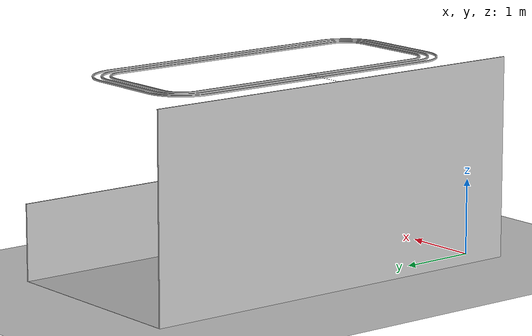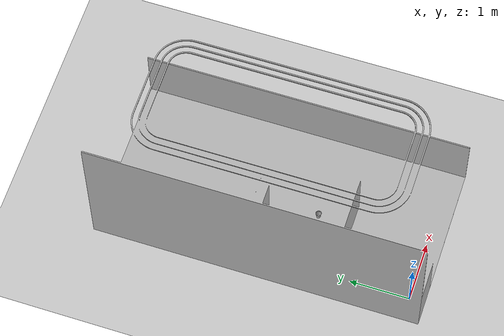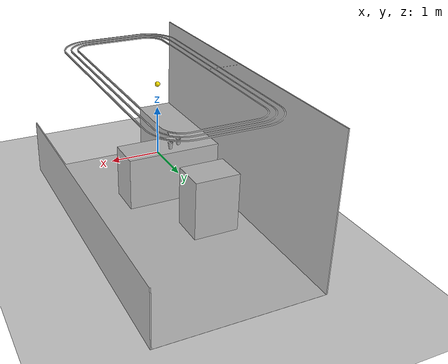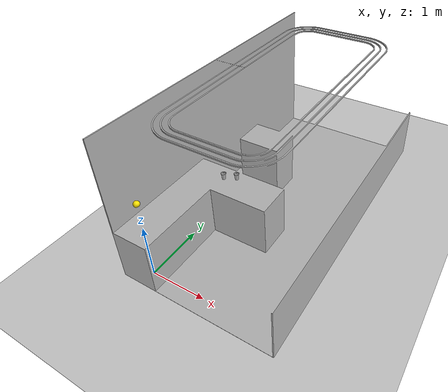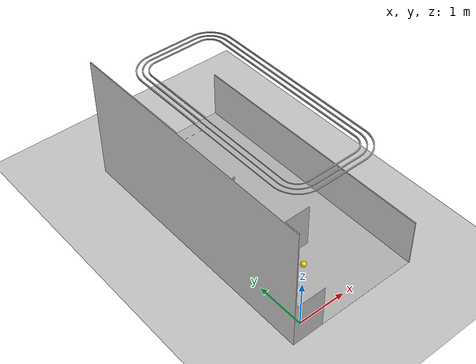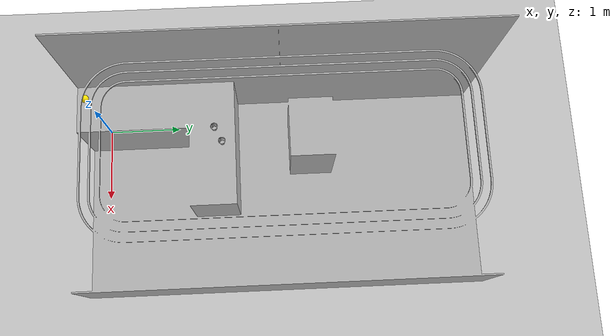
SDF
<?xml version="1.0"?>
<sdf version="1.6">
  <world name="smart_kitchen">

    <!-- Physics -->
    <physics name="2ms" type="ignored">
      <max_step_size>0.002</max_step_size>
      <real_time_factor>1.0</real_time_factor>
    </physics>

    <!-- Plugins -->
    <plugin filename="gz-sim-physics-system"
            name="gz::sim::systems::Physics"/>
    <plugin filename="gz-sim-user-commands-system"
            name="gz::sim::systems::UserCommands"/>
    <plugin filename="gz-sim-scene-broadcaster-system"
            name="gz::sim::systems::SceneBroadcaster"/>
    <plugin filename="gz-sim-sensors-system"
            name="gz::sim::systems::Sensors">
      <render_engine>ogre2</render_engine>
    </plugin>
    <plugin filename="gz-sim-contact-system"
            name="gz::sim::systems::Contact"/>

    <!-- Sky -->
    <scene>
      <ambient>0.4 0.4 0.4 1</ambient>
      <background>0.7 0.8 1.0 1</background>
      <shadows>true</shadows>
      <grid>false</grid>
    </scene>

    <!-- Lighting -->
    <light type="directional" name="sun">
      <cast_shadows>true</cast_shadows>
      <pose>0 0 10 0 0 0</pose>
      <diffuse>0.8 0.8 0.8 1</diffuse>
      <specular>0.2 0.2 0.2 1</specular>
      <attenuation>
        <range>1000</range>
        <constant>0.9</constant>
        <linear>0.01</linear>
        <quadratic>0.001</quadratic>
      </attenuation>
      <direction>-0.5 0.1 -0.9</direction>
    </light>

    <!-- Fill light -->
    <light type="directional" name="fill_light">
      <cast_shadows>false</cast_shadows>
      <pose>0 0 5 0 0 0</pose>
      <diffuse>0.3 0.3 0.35 1</diffuse>
      <specular>0.1 0.1 0.1 1</specular>
      <direction>0.5 -0.1 -0.5</direction>
    </light>

    <!-- Ground Plane -->
    <model name="ground_plane">
      <static>true</static>
      <link name="link">
        <collision name="collision">
          <geometry>
            <plane>
              <normal>0 0 1</normal>
              <size>100 100</size>
            </plane>
          </geometry>
        </collision>
        <visual name="visual">
          <geometry>
            <plane>
              <normal>0 0 1</normal>
              <size>100 100</size>
            </plane>
          </geometry>
          <material>
            <ambient>0.8 0.8 0.8 1</ambient>
            <diffuse>0.8 0.8 0.8 1</diffuse>
            <specular>0.8 0.8 0.8 1</specular>
          </material>
        </visual>
      </link>
    </model>

    <!-- Kitchen environment -->
    <include>
      <uri>model://kitchen</uri>
      <name>kitchen</name>
      <pose>0 0 0 0 0 0</pose>
    </include>

    <!-- Blue cup on the counter -->
    <include>
      <uri>model://cup_blue</uri>
      <name>cup_blue</name>
      <pose>0.5 1.7 0.950 0 0 0</pose>
    </include>

    <!-- Red cup on the counter -->
    <include>
      <uri>model://cup_red</uri>
      <name>cup_red</name>
      <pose>0.3 1.6 0.950 0 0 0</pose>
    </include>

    <!-- Blue cup filled with liquid -->

    <!-- Red cup filled with liquid -->

    <!-- Visual marker: no physics
         Move it at runtime by publishing to /visual_marker/goal_pose
         (geometry_msgs/Pose) -->
    <model name="visual_marker">
      <static>true</static>
      <pose>0.0 0.0 1.5 0 0 0</pose>

      <plugin filename="gz-sim-pose-publisher-system"
              name="gz::sim::systems::PosePublisher">
        <publish_link_pose>false</publish_link_pose>
        <publish_model_pose>true</publish_model_pose>
        <update_frequency>10.0</update_frequency>
      </plugin>

      <link name="link">
        <visual name="sphere_visual">
          <geometry>
            <sphere>
              <radius>0.05</radius>
            </sphere>
          </geometry>
          <material>
            <ambient>1.0 0.9 0.0 1.0</ambient>
            <diffuse>1.0 0.9 0.0 1.0</diffuse>
            <specular>0.5 0.5 0.0 1.0</specular>
            <emissive>0.4 0.35 0.0 1.0</emissive>
          </material>
          <transparency>0.0</transparency>
          <cast_shadows>false</cast_shadows>
        </visual>
      </link>
    </model>

  </world>
</sdf>

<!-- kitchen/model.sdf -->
<sdf version="1.6">
  <model name="kitchen">
    <static>true</static>
    <link name="link">
      <visual name="visual">
        <geometry>
          <mesh>
            <uri>model://kitchen/meshes/kitchen.obj</uri>
            <scale>1 1 1</scale>
          </mesh>
        </geometry>
      </visual>
      <collision name="collision">
        <geometry>
          <mesh>
            <uri>model://kitchen/meshes/kitchen.obj</uri>
            <scale>1 1 1</scale>
          </mesh>
        </geometry>
        <surface>
          <friction>
            <ode><mu>0.8</mu><mu2>0.8</mu2></ode>
          </friction>
          <contact>
            <ode>
              <kp>1e6</kp><kd>100</kd>
              <max_vel>0.01</max_vel><min_depth>0.001</min_depth>
            </ode>
          </contact>
        </surface>
      </collision>
    </link>
  </model>
</sdf>

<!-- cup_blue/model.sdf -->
<sdf version="1.6">
  <model name="cup_blue">
    <static>false</static>
    <allow_auto_disable>true</allow_auto_disable>
    <link name="link">
      <inertial>
        <mass>0.007</mass>
        <pose>0 0 0.05725 0 0 0</pose>
        <inertia>
          <ixx>1.1513e-5</ixx>
          <ixy>0</ixy>
          <ixz>0</ixz>
          <iyy>1.1513e-5</iyy>
          <iyz>0</iyz>
          <izz>7.7315e-6</izz>
        </inertia>
      </inertial>
      <linear_damping>0.3</linear_damping>
      <angular_damping>0.3</angular_damping>
      <visual name="visual">
        <geometry>
          <mesh>
            <uri>model://cup_blue/meshes/cup_blue.obj</uri>
          </mesh>
        </geometry>
      </visual>
      <collision name="collision">
        <pose>0 0 0.05725 0 0 0</pose>
        <geometry>
          <cylinder>
            <radius>0.047</radius>
            <length>0.1145</length>
          </cylinder>
        </geometry>
        <surface>
          <bounce>
            <restitution_coefficient>0.0</restitution_coefficient>
            <threshold>1e6</threshold>
          </bounce>
          <friction>
            <ode>
              <mu>0.6</mu>
              <mu2>0.6</mu2>
            </ode>
          </friction>
          <contact>
            <ode>
              <kp>1e6</kp>
              <kd>100</kd>
              <max_vel>0.01</max_vel>
              <min_depth>0.001</min_depth>
            </ode>
          </contact>
        </surface>
      </collision>
    </link>
  </model>
</sdf>

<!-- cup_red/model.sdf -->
<sdf version="1.6">
  <model name="cup_red">
    <static>false</static>
    <allow_auto_disable>true</allow_auto_disable>
    <link name="link">
      <inertial>
        <mass>0.007</mass>
        <pose>0 0 0.05725 0 0 0</pose>
        <inertia>
          <ixx>1.1513e-5</ixx>
          <ixy>0</ixy>
          <ixz>0</ixz>
          <iyy>1.1513e-5</iyy>
          <iyz>0</iyz>
          <izz>7.7315e-6</izz>
        </inertia>
      </inertial>
      <linear_damping>0.3</linear_damping>
      <angular_damping>0.3</angular_damping>
      <visual name="visual">
        <geometry>
          <mesh>
            <uri>model://cup_red/meshes/cup_red.obj</uri>
          </mesh>
        </geometry>
      </visual>
      <collision name="collision">
        <pose>0 0 0.05725 0 0 0</pose>
        <geometry>
          <cylinder>
            <radius>0.047</radius>
            <length>0.1145</length>
          </cylinder>
        </geometry>
        <surface>
          <bounce>
            <restitution_coefficient>0.0</restitution_coefficient>
            <threshold>1e6</threshold>
          </bounce>
          <friction>
            <ode>
              <mu>0.6</mu>
              <mu2>0.6</mu2>
            </ode>
          </friction>
          <contact>
            <ode>
              <kp>1e6</kp>
              <kd>100</kd>
              <max_vel>0.01</max_vel>
              <min_depth>0.001</min_depth>
            </ode>
          </contact>
        </surface>
      </collision>
    </link>
  </model>
</sdf>
